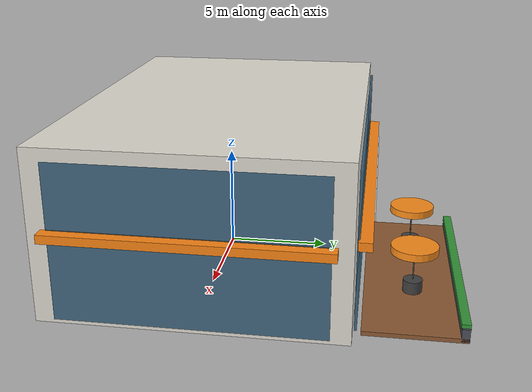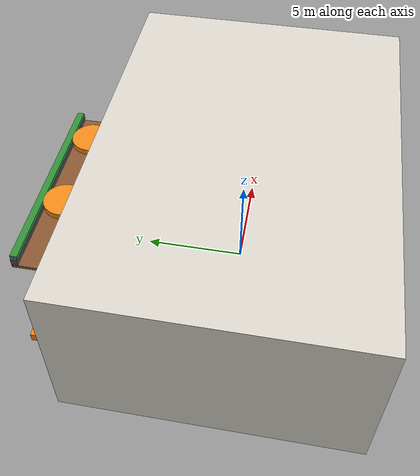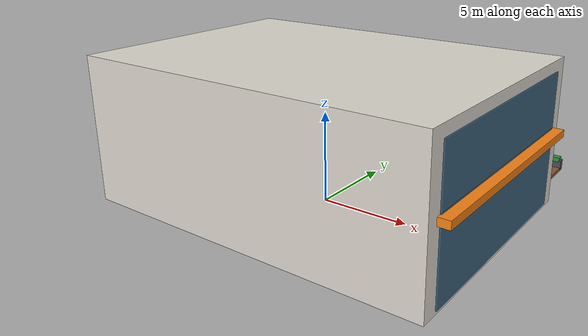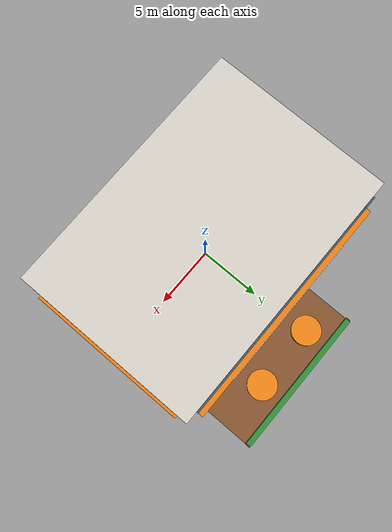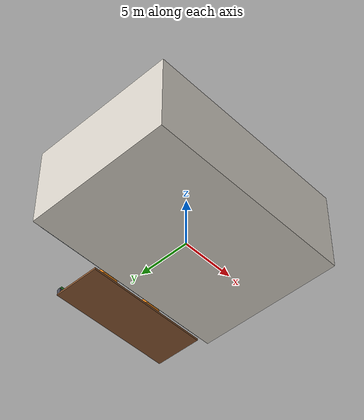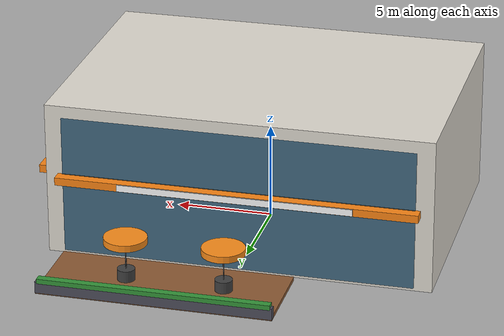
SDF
<?xml version="1.0" ?>
<sdf version="1.8">
  <model name="orange_hour_cafe">
    <static>true</static>
    <link name="cafe_link">

      <!-- Collision -->
      <collision name="cafe_col">
        <pose>0 0 4.0 0 0 0</pose>
        <geometry><box><size>20.0 14.0 8.0</size></box></geometry>
      </collision>

      <!-- 2F 現代暖木與清水模主建物 (Cafe Building) -->
      <visual name="cafe_body">
        <pose>0 0 4.0 0 0 0</pose>
        <geometry><box><size>19.8 13.8 8.0</size></box></geometry>
        <material>
          <ambient>0.82 0.80 0.76 1</ambient>
          <diffuse>0.88 0.86 0.82 1</diffuse>
        </material>
      </visual>

      <!-- 轉角全景落地大玻璃窗 (東向臨關新路 Y=+7m, 北向臨關新二街 X=+10m) -->
      <visual name="glass_front">
        <pose>0 7.02 3.8 0 0 0</pose>
        <geometry><box><size>18.0 0.1 7.2</size></box></geometry>
        <material><ambient>0.15 0.3 0.4 0.85</ambient><diffuse>0.2 0.38 0.5 0.85</diffuse><specular>0.9 0.95 1 1</specular></material>
      </visual>
      <visual name="glass_side">
        <pose>9.92 0 3.8 0 0 0</pose>
        <geometry><box><size>0.1 12.0 7.2</size></box></geometry>
        <material><ambient>0.15 0.3 0.4 0.85</ambient><diffuse>0.2 0.38 0.5 0.85</diffuse><specular>0.9 0.95 1 1</specular></material>
      </visual>

      <!-- 橘時咖啡暖橘色招牌橫幅 (Orange Canopy & Sign) -->
      <visual name="orange_canopy_front">
        <pose>0 7.3 4.2 0 0 0</pose>
        <geometry><box><size>18.5 0.6 0.4</size></box></geometry>
        <material><ambient>0.92 0.45 0.05 1</ambient><diffuse>0.98 0.52 0.08 1</diffuse></material>
      </visual>
      <visual name="orange_canopy_side">
        <pose>10.2 0 4.2 0 0 0</pose>
        <geometry><box><size>0.6 12.5 0.4</size></box></geometry>
        <material><ambient>0.92 0.45 0.05 1</ambient><diffuse>0.98 0.52 0.08 1</diffuse></material>
      </visual>
      <visual name="cafe_sign_front">
        <pose>0 7.62 4.2 0 0 0</pose>
        <geometry><box><size>12.0 0.05 0.35</size></box></geometry>
        <material><ambient>1 1 1 1</ambient><diffuse>1 1 1 1</diffuse><emissive>0.4 0.4 0.4 1</emissive></material>
      </visual>

      <!-- 戶外露天木質休閒平台 (Outdoor Deck on Corner) -->
      <visual name="deck_floor">
        <pose>3.0 9.5 0.1 0 0 0</pose>
        <geometry><box><size>12.0 4.5 0.2</size></box></geometry>
        <material><ambient>0.45 0.28 0.15 1</ambient><diffuse>0.55 0.35 0.20 1</diffuse></material>
      </visual>

      <!-- 戶外經典橘色遮陽傘與咖啡圓桌 1 (Umbrella Set 1) -->
      <visual name="cafe_table1"><pose>0.0 9.5 0.42 0 0 0</pose><geometry><cylinder><radius>0.45</radius><length>0.75</length></cylinder></geometry><material><ambient>0.2 0.2 0.2 1</ambient><diffuse>0.25 0.25 0.25 1</diffuse></material></visual>
      <visual name="umbrella_pole1"><pose>0.0 9.5 1.25 0 0 0</pose><geometry><cylinder><radius>0.03</radius><length>2.5</length></cylinder></geometry><material><ambient>0.3 0.3 0.3 1</ambient><diffuse>0.35 0.35 0.35 1</diffuse></material></visual>
      <visual name="umbrella_top1"><pose>0.0 9.5 2.35 0 0 0</pose><geometry><cylinder><radius>1.1</radius><length>0.35</length></cylinder></geometry><material><ambient>0.95 0.48 0.08 1</ambient><diffuse>0.98 0.55 0.1 1</diffuse></material></visual>

      <!-- 戶外遮陽傘與咖啡圓桌 2 (Umbrella Set 2) -->
      <visual name="cafe_table2"><pose>5.0 9.5 0.42 0 0 0</pose><geometry><cylinder><radius>0.45</radius><length>0.75</length></cylinder></geometry><material><ambient>0.2 0.2 0.2 1</ambient><diffuse>0.25 0.25 0.25 1</diffuse></material></visual>
      <visual name="umbrella_pole2"><pose>5.0 9.5 1.25 0 0 0</pose><geometry><cylinder><radius>0.03</radius><length>2.5</length></cylinder></geometry><material><ambient>0.3 0.3 0.3 1</ambient><diffuse>0.35 0.35 0.35 1</diffuse></material></visual>
      <visual name="umbrella_top2"><pose>5.0 9.5 2.35 0 0 0</pose><geometry><cylinder><radius>1.1</radius><length>0.35</length></cylinder></geometry><material><ambient>0.95 0.48 0.08 1</ambient><diffuse>0.98 0.55 0.1 1</diffuse></material></visual>

      <!-- 景觀常綠灌木花槽 (Planters) -->
      <visual name="planter_box"><pose>3.0 11.6 0.35 0 0 0</pose><geometry><box><size>12.0 0.35 0.6</size></box></geometry><material><ambient>0.25 0.25 0.28 1</ambient><diffuse>0.30 0.30 0.35 1</diffuse></material></visual>
      <visual name="planter_hedges"><pose>3.0 11.6 0.7 0 0 0</pose><geometry><box><size>11.8 0.4 0.25</size></box></geometry><material><ambient>0.15 0.48 0.18 1</ambient><diffuse>0.2 0.58 0.22 1</diffuse></material></visual>

    </link>
  </model>
</sdf>
